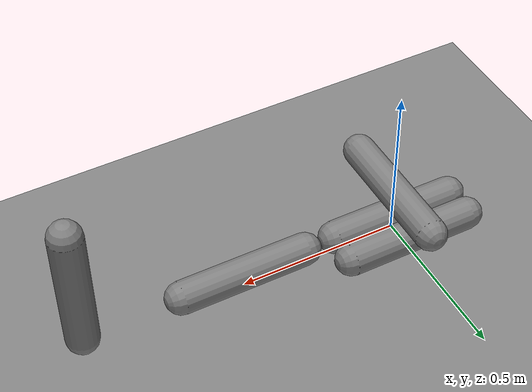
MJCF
<mujoco model="contact_capsules">
  <option timestep="0.002"/>

  <worldbody>
    <geom name="floor" type="plane" size="5 5 .1" friction="0.5 0.005 0.0001"/>

    <body name="cap_a" pos="0 0 .05">
      <freejoint/>
      <geom name="cap_a_geom" type="capsule" size=".05 .2" euler="0 90 0" mass="1" friction="0.5 0.005 0.0001"/>
    </body>

    <body name="cap_b" pos="0 0 .15">
      <freejoint/>
      <geom name="cap_b_geom" type="capsule" size=".05 .2" euler="90 0 0" mass="1" friction="0.5 0.005 0.0001"/>
    </body>

    <body name="cap_c" pos="0 .1 .05" quat="0.7071066927982018 -0.0003535533758618827 0.7071066927982018 0.0003535533758618827">
      <freejoint/>
      <geom name="cap_c_geom" type="capsule" size=".05 .2" mass="1" friction="0.5 0.005 0.0001"/>
    </body>

    <body name="cap_d" pos=".5 0 .05">
      <freejoint/>
      <geom name="cap_d_geom" type="capsule" size=".05 .2" euler="0 90 0" mass="1" friction="0.5 0.005 0.0001"/>
    </body>

    <body name="cap_e" pos="1 0 .25">
      <freejoint/>
      <geom name="cap_e_geom" type="capsule" size=".05 .2" mass="1" friction="0.5 0.005 0.0001"/>
    </body>
  </worldbody>
</mujoco>
